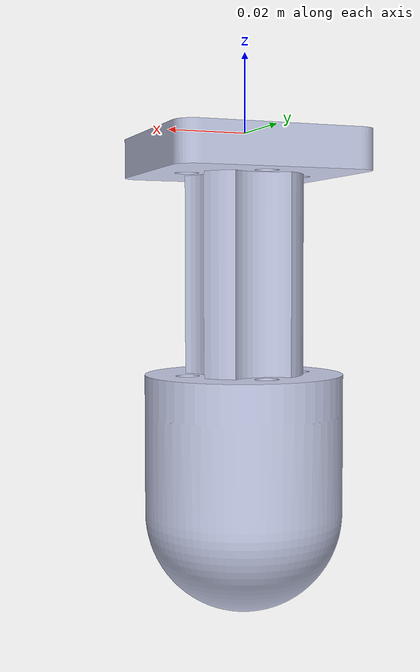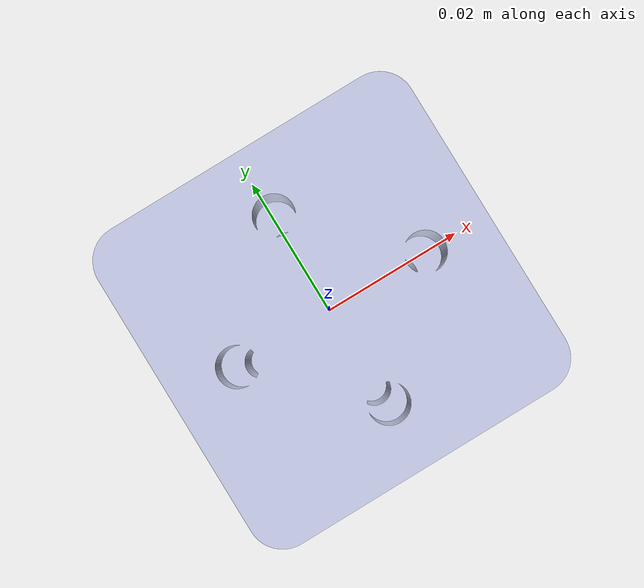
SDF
<?xml version="1.0"?>
<sdf version="1.7">
  <model name="TEO_stump">
    <link name="Stump_link">
      <pose>0 0 0 -1.5708 0 0</pose>
      <inertial>
        <pose>-0.0000 -0.0000 -0.0 0 -0 0</pose>
        <mass>0.1</mass>
        <inertia>
          <ixx>0.005330647</ixx>
          <ixy>0.000000128</ixy>
          <ixz>0.000100487</ixz>
          <iyy>0.005345282</iyy>
          <iyz>-0.00000807</iyz>
          <izz>0.000882489</izz>
        </inertia>
      </inertial>
      <visual name="Stump_visual">
        <pose>-0.025 -0.0 -0.07 0 -0 0</pose>
        <geometry>
          <mesh>
            <uri>model://teo_stump/meshes/Stump.stl</uri>
          </mesh>
        </geometry>
        <material>
          <ambient>0.792157 0.819608 0.933333 1</ambient>
          <diffuse>0.792157 0.819608 0.933333 1</diffuse>
          <specular>0.633726 0.655686 0.746667 1</specular>
        </material>
      </visual>
      <collision name="Stump_collision">
        <pose>-0.025 -0.0 -0.075 0 -0 0</pose>
        <geometry>
          <mesh>
            <uri>model://teo_stump/meshes/Stump.stl</uri>
          </mesh>
        </geometry>
      </collision>
    </link>
  </model>
</sdf>
